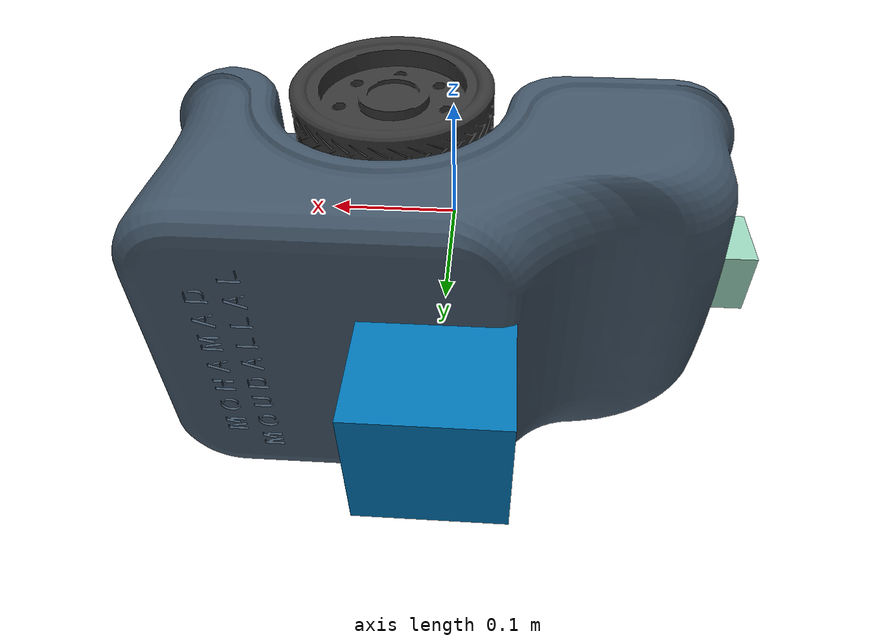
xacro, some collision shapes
<?xml version="1.0" encoding="utf-8"?>
<robot name="drive_bot" xmlns:xacro="http://www.ros.org/wiki/xacro">

  <link name="base_link">
    <inertial>
      <origin xyz="0 0 0" rpy="0 0 0" />
      <mass value="13.85" />
      <inertia ixx="0.094768" ixy="5.1625E-06" ixz="0.017784" iyy="0.2104" iyz="-3.9186E-06" izz="0.23604" />
    </inertial>
    <visual>
      <origin xyz="0 0 0" rpy="0 0 0" />
      <geometry>
        <mesh filename="package://drive_bot/meshes/base_link.STL" />
      </geometry>
      <material name="">
        <color rgba="0.254 0.329 0.4 1" />
      </material>
    </visual>
    <collision>
      <origin xyz="0 0 0" rpy="0 0 0" />
      <geometry>
        <mesh filename="package://drive_bot/meshes/base_link.STL" />
      </geometry>
    </collision>
  </link>
  <link name="left_wheel">
    <inertial>
      <origin xyz="-0.04 -0.03 -0.03" rpy="0 0 0" />
      <mass value="0.61508" />
      <inertia ixx="0.0010294" ixy="1.014E-13" ixz="2.613E-13" iyy="0.0010294" iyz="-3.4572E-14" izz="0.0016534" />
    </inertial>
    <visual>
      <origin xyz="-0.04 -0.03 -0.03" rpy="0 0 0" />
      <geometry>
        <mesh filename="package://drive_bot/meshes/left_wheel.STL" />
      </geometry>
      <material name="">
        <color rgba="0.211 0.211 0.211 1" />
      </material>
    </visual>
    <collision>
      <origin xyz="-0.04 -0.03 -0.03" rpy="0 0 0" />
      <geometry>
        <mesh filename="package://drive_bot/meshes/left_wheel.STL" />
      </geometry>
    </collision>
  </link>

  <link name="right_wheel">
    <inertial>
      <origin xyz="-0.04 -0.03 0.03" rpy="0 0 0" />
      <mass value="0.61508" />
      <inertia ixx="0.0010294" ixy="1.014E-13" ixz="2.613E-13" iyy="0.0010294" iyz="-3.4573E-14" izz="0.0016534" />
    </inertial>
    <visual>
      <origin xyz="-0.04 -0.03 0.03" rpy="0 0 0" />
      <geometry>
        <mesh filename="package://drive_bot/meshes/right_wheel.STL" />
      </geometry>
      <material name="">
        <color rgba="0.211 0.211 0.211 1" />
      </material>
    </visual>
    <collision>
      <origin xyz="-0.04 -0.03 0.03" rpy="0 0 0" />
      <geometry>
        <mesh filename="package://drive_bot/meshes/right_wheel.STL" />
      </geometry>
    </collision>
  </link>

  <link name='camera'>
    <inertial>
      <mass value="0.1" />
      <origin xyz="0.0 0 0" rpy=" 0 0 0" />
      <inertia ixx="1e-6" ixy="0" ixz="0" iyy="1e-6" iyz="0" izz="1e-6" />
    </inertial>

    <collision name='camera_collision'>
      <origin xyz="0.0 0 0" rpy=" 0 0 0" />
      <geometry>
        <box size="0.05 0.05 0.05" />
      </geometry>
    </collision>

    <visual name='camera_visual'>
      <origin xyz="0.0 0 0" rpy=" 0 0 0" />
      <geometry>
        <box size="0.05 0.05 0.05" />
      </geometry>
      <material name="">
        <color rgba="0.592 0.819 0.725 1" />
      </material>
    </visual>
  </link>
  <link name='hokuyo'>
    <inertial>
      <mass value="1e-5" />
      <origin xyz="0 0 0" rpy=" 0 0 0" />
      <inertia ixx="1e-6" ixy="0" ixz="0" iyy="1e-6" iyz="0" izz="1e-6" />
    </inertial>

    <collision name='hokuyo_collision'>
      <origin xyz="0.0 0 0" rpy=" 0 0 0" />
      <geometry>
        <box size="0.1 0.1 0.1" />
      </geometry>
    </collision>

    <visual name='hokuyo_visual'>
      <origin xyz="0.0 0 0" rpy=" 0 0 0" />
      <geometry>
        <mesh filename="package://my_robot/meshes/hokuyo.dae" />
      </geometry>
    </visual>
  </link>

  <joint name="base_link_left_wheel" type="continuous">
    <origin xyz="0.04 0.03 0.03" rpy="0 0 0" />
    <parent link="base_link" />
    <child link="left_wheel" />
    <axis xyz="0 0 1" />
    <limit effort="1" velocity="1" />
  </joint>
  <joint name="base_link_right_wheel" type="continuous">
    <origin xyz="0.04 0.03 -0.03" rpy="0 0 0" />
    <parent link="base_link" />
    <child link="right_wheel" />
    <axis xyz="0 0 1" />
    <limit effort="1" velocity="1" />
  </joint>
  <joint type="fixed" name="camera_joint">
    <origin xyz="-0.2 0.05 0" rpy="1.5707 0 3.14" />
    <child link="camera" />
    <parent link="base_link" />
    <axis xyz="0 1 0" rpy="0 0 0" />
  </joint>
  <joint type="fixed" name="hokuyo_joint">
    <origin xyz="0 0.2 0" rpy="1.5707 0 3.14" />
    <child link="hokuyo" />
    <parent link="base_link" />
    <axis xyz="1 0 0" rpy="0 0 0" />
  </joint>

  <gazebo reference="base_link">
    <material name="">
      Gazebo/Turquoise
    </material>
  </gazebo>
  <gazebo reference="left_wheel">
    <material name="">
      Gazebo/DarkGrey
    </material>
  </gazebo>
  <gazebo reference="right_wheel">
    <material name="">
      Gazebo/DarkGrey
    </material>
  </gazebo>
  <gazebo reference="camera">
    <material name="">
      Gazebo/Gold
    </material>
  </gazebo>

  <xacro:include filename="$(find drive_bot)/urdf/drive_bot.gazebo" />
</robot>
